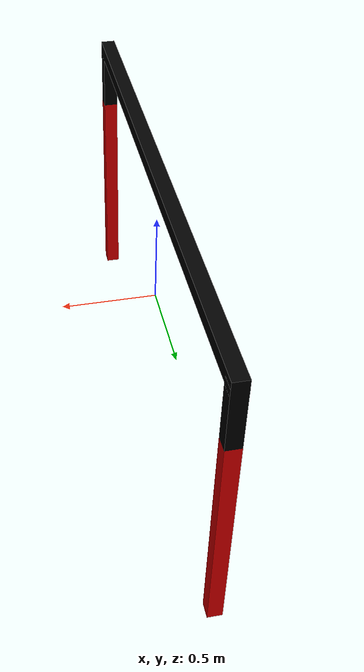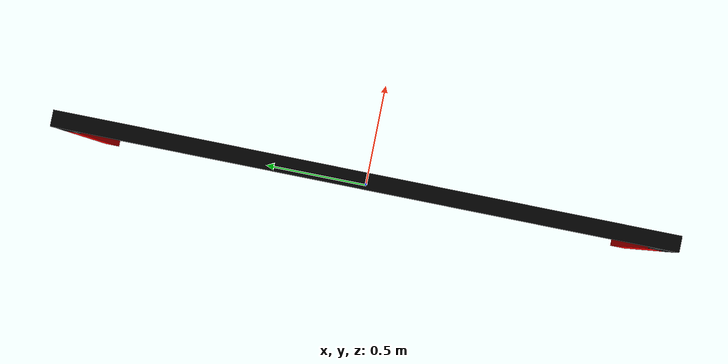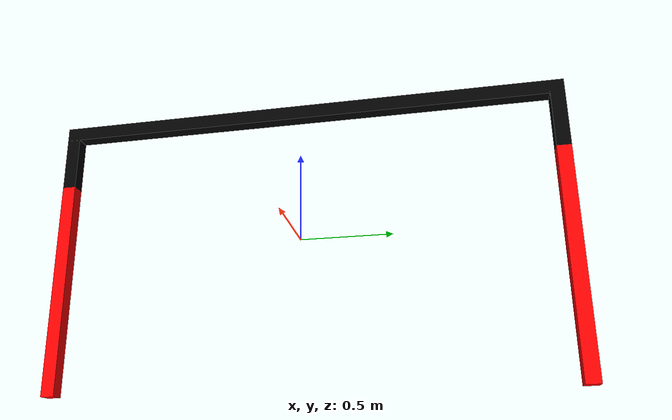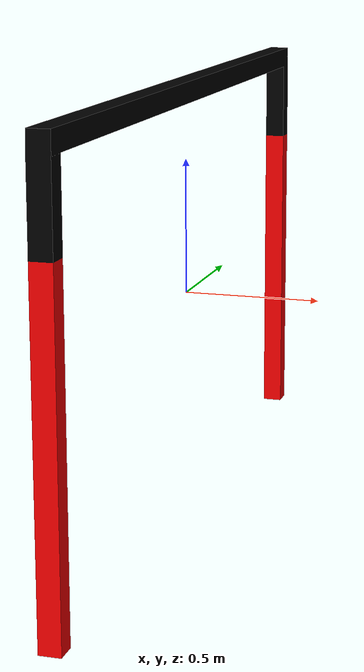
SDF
<?xml version="1.0" ?>
<sdf version="1.5">
<!-- SDF file for the gate -->
<model name="qual_gate_no_middle">
  <static>true</static>
  <link name="gate_link">

  <visual name="qual_gate_no_middle">
    <pose>0 0 0 0 0 0</pose>
    <geometry>
      <mesh><uri>model://qual_gate_no_middle/meshes/qual_gate_no_middle.dae</uri><scale>1 1 1</scale></mesh>
    </geometry>
  </visual>

  <collision name="qual_gate_no_middle">
    <pose>0 0 0 0 0 0</pose>
    <geometry>
      <mesh><uri>model://qual_gate_no_middle/meshes/qual_gate_no_middle.stl</uri><scale>1 1 1</scale></mesh>
    </geometry>
  </collision>

  </link>
</model>
</sdf>
